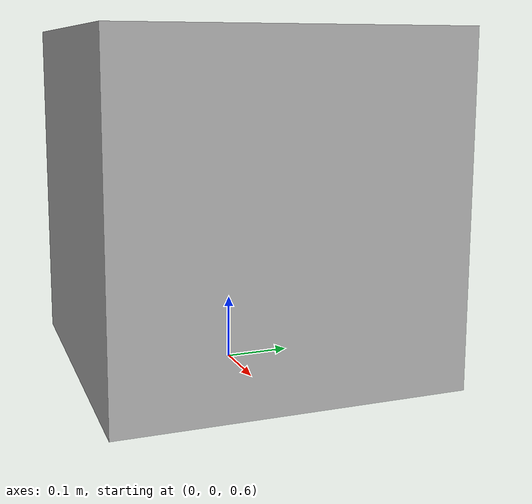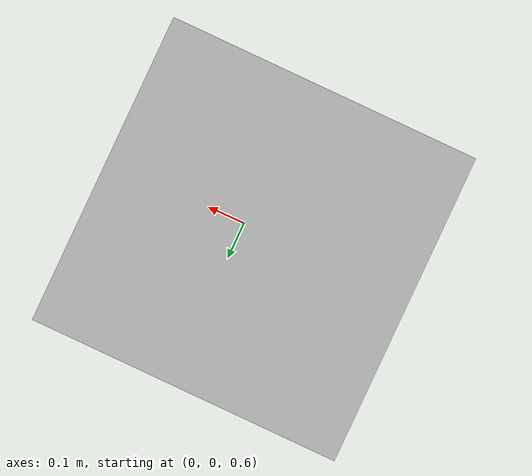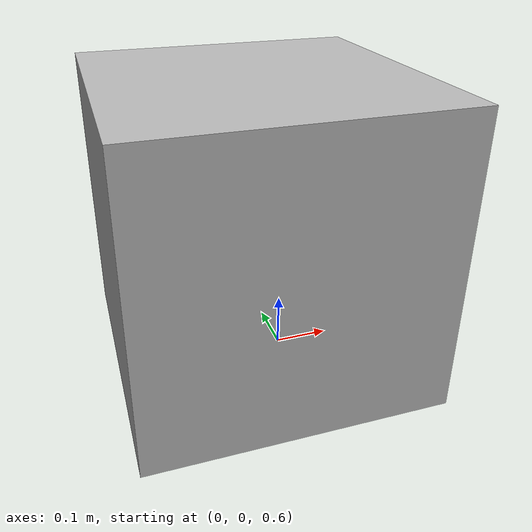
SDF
<?xml version="1.0" ?>
<sdf version="1.5">
  <model name="MBZIRC_redCube">
    <link name="link">
      <pose>0 0 0.5 0 0 0</pose>
      <collision name="collision">
        <geometry>
          <mesh>
            <uri>model://MBZRIC_redCube/meshes/MBZIRC_redCube.stl</uri>
          </mesh>
        </geometry>
      </collision>
      <visual name="visual">
        <geometry>
          <mesh>
            <uri>model://MBZRIC_redCube/meshes/MBZIRC_redCube.dae</uri>
          </mesh>
        </geometry>
      </visual>
    </link>
  </model>
</sdf>
